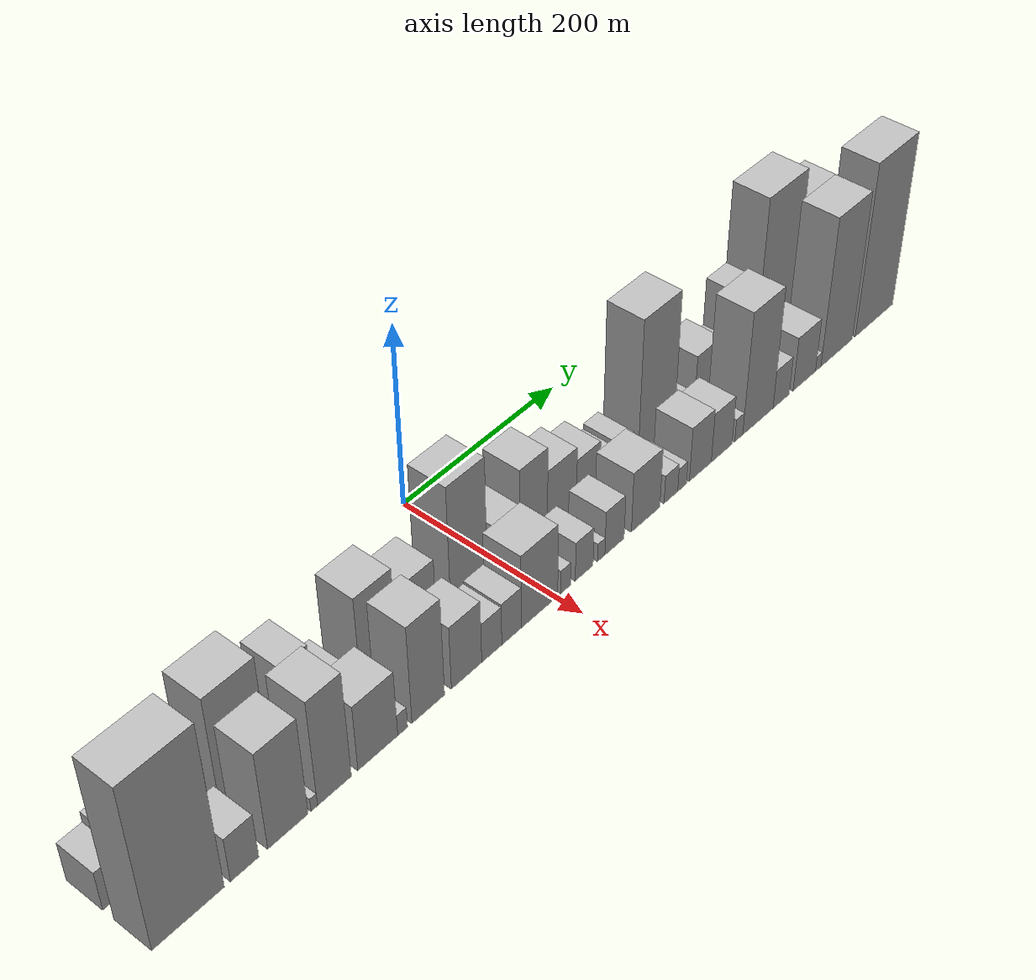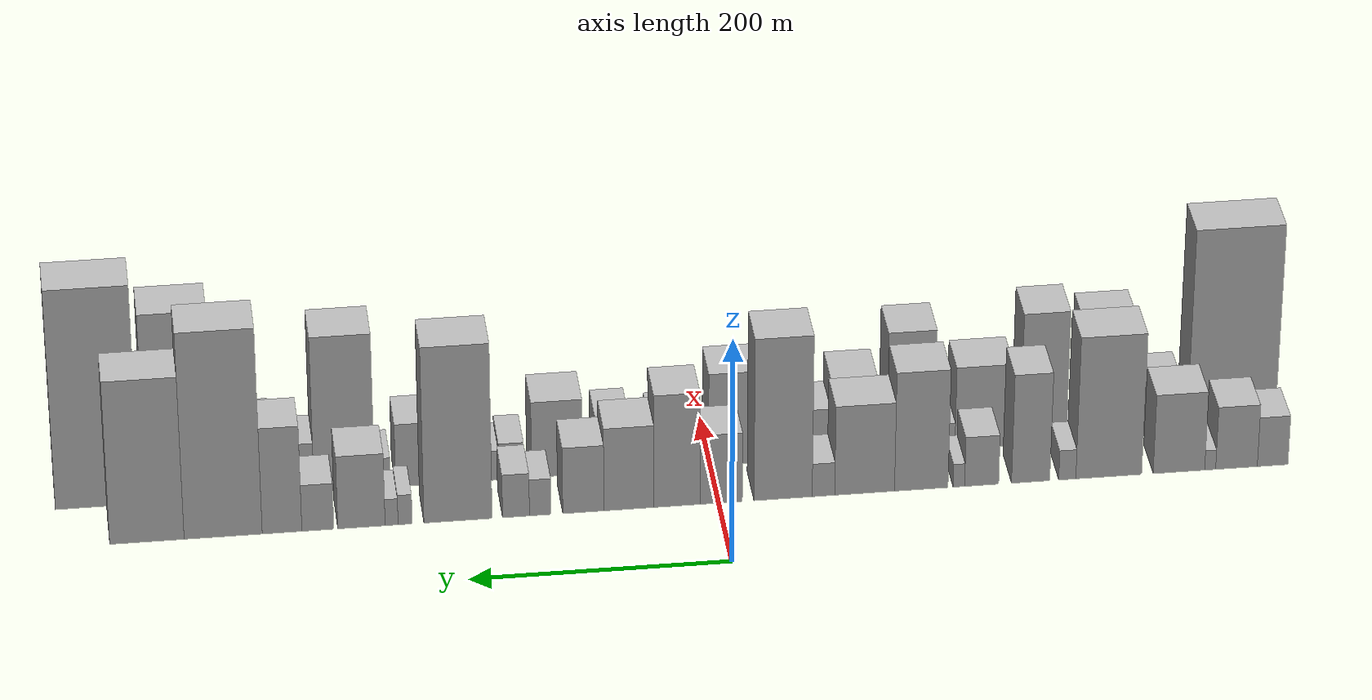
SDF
<sdf version="1.6">
 <world name="default">
  <scene>
   <sky><clouds><speed>12</speed></clouds></sky>
   <ambient>0.4 0.4 0.4 1</ambient>
   <background>0.7 0.7 0.7 1</background>
   <shadows>1</shadows>
  </scene>
  <gravity>0 0 -9.8066</gravity>
  <magnetic_field>6e-06 2.3e-05 -4.2e-05</magnetic_field>
  <physics default="0" name="default_physics" type="ode">
   <ode>
    <solver>
     <type>quick</type>
     <iters>10</iters>
     <sor>1.0</sor>
     <use_dynamic_moi_rescaling>0</use_dynamic_moi_rescaling>
    </solver>
    <constraints>
     <cfm>0</cfm>
     <erp>0.2</erp>
     <contact_max_correcting_vel>100</contact_max_correcting_vel>
     <contact_surface_layer>0.001</contact_surface_layer>
    </constraints>
   </ode>
   <max_step_size>0.004</max_step_size>
   <real_time_factor>1</real_time_factor>
   <real_time_update_rate>250</real_time_update_rate>
  </physics>
  <light name="sun" type="directional">
   <pose>0 0 10 0 0 0</pose>
   <diffuse>0.8 0.8 0.8 1</diffuse>
   <specular>0.2 0.2 0.2 1</specular>
   <attenuation>
    <range>1000</range>
    <constant>0.9</constant>
    <linear>0.01</linear>
    <quadratic>0.001</quadratic>
   </attenuation>
   <direction>-0.5 0.1 -0.9</direction>
  </light>
  <model name="building_1">
   <static>1</static>
   <pose>100.0000 -431.9606 0 0.000000 0.000000 0.000000</pose>
   <link name="link">
    <pose>0 0 22.50 0 0 0</pose>
    <collision name="collision"><geometry><box><size>40.0000 24.0787 45.0000</size></box></geometry></collision>
    <visual name="visual">
     <cast_shadows>0</cast_shadows>
     <geometry><box><size>40.0000 24.0787 45.0000</size></box></geometry>
     <material>
      <script>
       <uri>model://HANNAS_wall/materials/scripts</uri>
       <uri>model://HANNAS_wall/materials/textures</uri>
       <name>vrc/HANNAS_wall</name>
      </script>
     </material>
    </visual>
   </link>
  </model>
  <model name="building_2">
   <static>1</static>
   <pose>100.0000 -403.5433 0 0.000000 0.000000 0.000000</pose>
   <link name="link">
    <pose>0 0 28.50 0 0 0</pose>
    <collision name="collision"><geometry><box><size>40.0000 32.7560 57.0000</size></box></geometry></collision>
    <visual name="visual">
     <cast_shadows>0</cast_shadows>
     <geometry><box><size>40.0000 32.7560 57.0000</size></box></geometry>
     <material>
      <script>
       <uri>model://HANNAS_wall/materials/scripts</uri>
       <uri>model://HANNAS_wall/materials/textures</uri>
       <name>vrc/HANNAS_wall</name>
      </script>
     </material>
    </visual>
   </link>
  </model>
  <model name="building_3">
   <static>1</static>
   <pose>100.0000 -382.8551 0 0.000000 0.000000 0.000000</pose>
   <link name="link">
    <pose>0 0 9.00 0 0 0</pose>
    <collision name="collision"><geometry><box><size>40.0000 8.6203 18.0000</size></box></geometry></collision>
    <visual name="visual">
     <cast_shadows>0</cast_shadows>
     <geometry><box><size>40.0000 8.6203 18.0000</size></box></geometry>
     <material>
      <script>
       <uri>model://HANNAS_wall/materials/scripts</uri>
       <uri>model://HANNAS_wall/materials/textures</uri>
       <name>vrc/HANNAS_wall</name>
      </script>
     </material>
    </visual>
   </link>
  </model>
  <model name="building_4">
   <static>1</static>
   <pose>100.0000 -358.3349 0 0.000000 0.000000 0.000000</pose>
   <link name="link">
    <pose>0 0 36.00 0 0 0</pose>
    <collision name="collision"><geometry><box><size>40.0000 40.4201 72.0000</size></box></geometry></collision>
    <visual name="visual">
     <cast_shadows>0</cast_shadows>
     <geometry><box><size>40.0000 40.4201 72.0000</size></box></geometry>
     <material>
      <script>
       <uri>model://HANNAS_wall/materials/scripts</uri>
       <uri>model://HANNAS_wall/materials/textures</uri>
       <name>vrc/HANNAS_wall</name>
      </script>
     </material>
    </visual>
   </link>
  </model>
  <model name="building_5">
   <static>1</static>
   <pose>100.0000 -303.3557 0 0.000000 0.000000 0.000000</pose>
   <link name="link">
    <pose>0 0 64.50 0 0 0</pose>
    <collision name="collision"><geometry><box><size>40.0000 51.5383 129.0000</size></box></geometry></collision>
    <visual name="visual">
     <cast_shadows>0</cast_shadows>
     <geometry><box><size>40.0000 51.5383 129.0000</size></box></geometry>
     <material>
      <script>
       <uri>model://HANNAS_wall/materials/scripts</uri>
       <uri>model://HANNAS_wall/materials/textures</uri>
       <name>vrc/HANNAS_wall</name>
      </script>
     </material>
    </visual>
   </link>
  </model>
  <model name="building_6">
   <static>1</static>
   <pose>100.0000 -270.9101 0 0.000000 0.000000 0.000000</pose>
   <link name="link">
    <pose>0 0 13.50 0 0 0</pose>
    <collision name="collision"><geometry><box><size>40.0000 13.3529 27.0000</size></box></geometry></collision>
    <visual name="visual">
     <cast_shadows>0</cast_shadows>
     <geometry><box><size>40.0000 13.3529 27.0000</size></box></geometry>
     <material>
      <script>
       <uri>model://HANNAS_wall/materials/scripts</uri>
       <uri>model://HANNAS_wall/materials/textures</uri>
       <name>vrc/HANNAS_wall</name>
      </script>
     </material>
    </visual>
   </link>
  </model>
  <model name="building_7">
   <static>1</static>
   <pose>100.0000 -242.2882 0 0.000000 0.000000 0.000000</pose>
   <link name="link">
    <pose>0 0 49.50 0 0 0</pose>
    <collision name="collision"><geometry><box><size>40.0000 29.8910 99.0000</size></box></geometry></collision>
    <visual name="visual">
     <cast_shadows>0</cast_shadows>
     <geometry><box><size>40.0000 29.8910 99.0000</size></box></geometry>
     <material>
      <script>
       <uri>model://HANNAS_wall/materials/scripts</uri>
       <uri>model://HANNAS_wall/materials/textures</uri>
       <name>vrc/HANNAS_wall</name>
      </script>
     </material>
    </visual>
   </link>
  </model>
  <model name="building_8">
   <static>1</static>
   <pose>100.0000 -204.0655 0 0.000000 0.000000 0.000000</pose>
   <link name="link">
    <pose>0 0 22.50 0 0 0</pose>
    <collision name="collision"><geometry><box><size>40.0000 26.5543 45.0000</size></box></geometry></collision>
    <visual name="visual">
     <cast_shadows>0</cast_shadows>
     <geometry><box><size>40.0000 26.5543 45.0000</size></box></geometry>
     <material>
      <script>
       <uri>model://HANNAS_wall/materials/scripts</uri>
       <uri>model://HANNAS_wall/materials/textures</uri>
       <name>vrc/HANNAS_wall</name>
      </script>
     </material>
    </visual>
   </link>
  </model>
  <model name="building_9">
   <static>1</static>
   <pose>100.0000 -186.3053 0 0.000000 0.000000 0.000000</pose>
   <link name="link">
    <pose>0 0 10.50 0 0 0</pose>
    <collision name="collision"><geometry><box><size>40.0000 8.9660 21.0000</size></box></geometry></collision>
    <visual name="visual">
     <cast_shadows>0</cast_shadows>
     <geometry><box><size>40.0000 8.9660 21.0000</size></box></geometry>
     <material>
      <script>
       <uri>model://HANNAS_wall/materials/scripts</uri>
       <uri>model://HANNAS_wall/materials/textures</uri>
       <name>vrc/HANNAS_wall</name>
      </script>
     </material>
    </visual>
   </link>
  </model>
  <model name="building_10">
   <static>1</static>
   <pose>100.0000 -157.0110 0 0.000000 0.000000 0.000000</pose>
   <link name="link">
    <pose>0 0 54.00 0 0 0</pose>
    <collision name="collision"><geometry><box><size>40.0000 41.6227 108.0000</size></box></geometry></collision>
    <visual name="visual">
     <cast_shadows>0</cast_shadows>
     <geometry><box><size>40.0000 41.6227 108.0000</size></box></geometry>
     <material>
      <script>
       <uri>model://HANNAS_wall/materials/scripts</uri>
       <uri>model://HANNAS_wall/materials/textures</uri>
       <name>vrc/HANNAS_wall</name>
      </script>
     </material>
    </visual>
   </link>
  </model>
  <model name="building_11">
   <static>1</static>
   <pose>100.0000 -112.9597 0 0.000000 0.000000 0.000000</pose>
   <link name="link">
    <pose>0 0 40.50 0 0 0</pose>
    <collision name="collision"><geometry><box><size>40.0000 46.4799 81.0000</size></box></geometry></collision>
    <visual name="visual">
     <cast_shadows>0</cast_shadows>
     <geometry><box><size>40.0000 46.4799 81.0000</size></box></geometry>
     <material>
      <script>
       <uri>model://HANNAS_wall/materials/scripts</uri>
       <uri>model://HANNAS_wall/materials/textures</uri>
       <name>vrc/HANNAS_wall</name>
      </script>
     </material>
    </visual>
   </link>
  </model>
  <model name="building_12">
   <static>1</static>
   <pose>100.0000 -80.9833 0 0.000000 0.000000 0.000000</pose>
   <link name="link">
    <pose>0 0 15.00 0 0 0</pose>
    <collision name="collision"><geometry><box><size>40.0000 17.4728 30.0000</size></box></geometry></collision>
    <visual name="visual">
     <cast_shadows>0</cast_shadows>
     <geometry><box><size>40.0000 17.4728 30.0000</size></box></geometry>
     <material>
      <script>
       <uri>model://HANNAS_wall/materials/scripts</uri>
       <uri>model://HANNAS_wall/materials/textures</uri>
       <name>vrc/HANNAS_wall</name>
      </script>
     </material>
    </visual>
   </link>
  </model>
  <model name="building_13">
   <static>1</static>
   <pose>100.0000 -49.6829 0 0.000000 0.000000 0.000000</pose>
   <link name="link">
    <pose>0 0 73.50 0 0 0</pose>
    <collision name="collision"><geometry><box><size>40.0000 45.1280 147.0000</size></box></geometry></collision>
    <visual name="visual">
     <cast_shadows>0</cast_shadows>
     <geometry><box><size>40.0000 45.1280 147.0000</size></box></geometry>
     <material>
      <script>
       <uri>model://HANNAS_wall/materials/scripts</uri>
       <uri>model://HANNAS_wall/materials/textures</uri>
       <name>vrc/HANNAS_wall</name>
      </script>
     </material>
    </visual>
   </link>
  </model>
  <model name="building_14">
   <static>1</static>
   <pose>100.0000 -1.7428 0 0.000000 0.000000 0.000000</pose>
   <link name="link">
    <pose>0 0 31.50 0 0 0</pose>
    <collision name="collision"><geometry><box><size>40.0000 32.7522 63.0000</size></box></geometry></collision>
    <visual name="visual">
     <cast_shadows>0</cast_shadows>
     <geometry><box><size>40.0000 32.7522 63.0000</size></box></geometry>
     <material>
      <script>
       <uri>model://HANNAS_wall/materials/scripts</uri>
       <uri>model://HANNAS_wall/materials/textures</uri>
       <name>vrc/HANNAS_wall</name>
      </script>
     </material>
    </visual>
   </link>
  </model>
  <model name="building_15">
   <static>1</static>
   <pose>100.0000 32.4129 0 0.000000 0.000000 0.000000</pose>
   <link name="link">
    <pose>0 0 51.00 0 0 0</pose>
    <collision name="collision"><geometry><box><size>40.0000 35.5591 102.0000</size></box></geometry></collision>
    <visual name="visual">
     <cast_shadows>0</cast_shadows>
     <geometry><box><size>40.0000 35.5591 102.0000</size></box></geometry>
     <material>
      <script>
       <uri>model://HANNAS_wall/materials/scripts</uri>
       <uri>model://HANNAS_wall/materials/textures</uri>
       <name>vrc/HANNAS_wall</name>
      </script>
     </material>
    </visual>
   </link>
  </model>
  <model name="building_16">
   <static>1</static>
   <pose>100.0000 69.4691 0 0.000000 0.000000 0.000000</pose>
   <link name="link">
    <pose>0 0 37.50 0 0 0</pose>
    <collision name="collision"><geometry><box><size>40.0000 38.5532 75.0000</size></box></geometry></collision>
    <visual name="visual">
     <cast_shadows>0</cast_shadows>
     <geometry><box><size>40.0000 38.5532 75.0000</size></box></geometry>
     <material>
      <script>
       <uri>model://HANNAS_wall/materials/scripts</uri>
       <uri>model://HANNAS_wall/materials/textures</uri>
       <name>vrc/HANNAS_wall</name>
      </script>
     </material>
    </visual>
   </link>
  </model>
  <model name="building_17">
   <static>1</static>
   <pose>100.0000 104.5784 0 0.000000 0.000000 0.000000</pose>
   <link name="link">
    <pose>0 0 30.00 0 0 0</pose>
    <collision name="collision"><geometry><box><size>40.0000 31.6654 60.0000</size></box></geometry></collision>
    <visual name="visual">
     <cast_shadows>0</cast_shadows>
     <geometry><box><size>40.0000 31.6654 60.0000</size></box></geometry>
     <material>
      <script>
       <uri>model://HANNAS_wall/materials/scripts</uri>
       <uri>model://HANNAS_wall/materials/textures</uri>
       <name>vrc/HANNAS_wall</name>
      </script>
     </material>
    </visual>
   </link>
  </model>
  <model name="building_18">
   <static>1</static>
   <pose>100.0000 137.7473 0 0.000000 0.000000 0.000000</pose>
   <link name="link">
    <pose>0 0 16.50 0 0 0</pose>
    <collision name="collision"><geometry><box><size>40.0000 16.6725 33.0000</size></box></geometry></collision>
    <visual name="visual">
     <cast_shadows>0</cast_shadows>
     <geometry><box><size>40.0000 16.6725 33.0000</size></box></geometry>
     <material>
      <script>
       <uri>model://HANNAS_wall/materials/scripts</uri>
       <uri>model://HANNAS_wall/materials/textures</uri>
       <name>vrc/HANNAS_wall</name>
      </script>
     </material>
    </visual>
   </link>
  </model>
  <model name="building_19">
   <static>1</static>
   <pose>100.0000 156.4100 0 0.000000 0.000000 0.000000</pose>
   <link name="link">
    <pose>0 0 19.50 0 0 0</pose>
    <collision name="collision"><geometry><box><size>40.0000 20.6530 39.0000</size></box></geometry></collision>
    <visual name="visual">
     <cast_shadows>0</cast_shadows>
     <geometry><box><size>40.0000 20.6530 39.0000</size></box></geometry>
     <material>
      <script>
       <uri>model://HANNAS_wall/materials/scripts</uri>
       <uri>model://HANNAS_wall/materials/textures</uri>
       <name>vrc/HANNAS_wall</name>
      </script>
     </material>
    </visual>
   </link>
  </model>
  <model name="building_20">
   <static>1</static>
   <pose>100.0000 200.9010 0 0.000000 0.000000 0.000000</pose>
   <link name="link">
    <pose>0 0 79.50 0 0 0</pose>
    <collision name="collision"><geometry><box><size>40.0000 52.3291 159.0000</size></box></geometry></collision>
    <visual name="visual">
     <cast_shadows>0</cast_shadows>
     <geometry><box><size>40.0000 52.3291 159.0000</size></box></geometry>
     <material>
      <script>
       <uri>model://HANNAS_wall/materials/scripts</uri>
       <uri>model://HANNAS_wall/materials/textures</uri>
       <name>vrc/HANNAS_wall</name>
      </script>
     </material>
    </visual>
   </link>
  </model>
  <model name="building_21">
   <static>1</static>
   <pose>100.0000 241.4765 0 0.000000 0.000000 0.000000</pose>
   <link name="link">
    <pose>0 0 13.50 0 0 0</pose>
    <collision name="collision"><geometry><box><size>40.0000 10.8219 27.0000</size></box></geometry></collision>
    <visual name="visual">
     <cast_shadows>0</cast_shadows>
     <geometry><box><size>40.0000 10.8219 27.0000</size></box></geometry>
     <material>
      <script>
       <uri>model://HANNAS_wall/materials/scripts</uri>
       <uri>model://HANNAS_wall/materials/textures</uri>
       <name>vrc/HANNAS_wall</name>
      </script>
     </material>
    </visual>
   </link>
  </model>
  <model name="building_22">
   <static>1</static>
   <pose>100.0000 251.8419 0 0.000000 0.000000 0.000000</pose>
   <link name="link">
    <pose>0 0 12.00 0 0 0</pose>
    <collision name="collision"><geometry><box><size>40.0000 9.9089 24.0000</size></box></geometry></collision>
    <visual name="visual">
     <cast_shadows>0</cast_shadows>
     <geometry><box><size>40.0000 9.9089 24.0000</size></box></geometry>
     <material>
      <script>
       <uri>model://HANNAS_wall/materials/scripts</uri>
       <uri>model://HANNAS_wall/materials/textures</uri>
       <name>vrc/HANNAS_wall</name>
      </script>
     </material>
    </visual>
   </link>
  </model>
  <model name="building_23">
   <static>1</static>
   <pose>100.0000 274.8817 0 0.000000 0.000000 0.000000</pose>
   <link name="link">
    <pose>0 0 33.00 0 0 0</pose>
    <collision name="collision"><geometry><box><size>40.0000 36.1708 66.0000</size></box></geometry></collision>
    <visual name="visual">
     <cast_shadows>0</cast_shadows>
     <geometry><box><size>40.0000 36.1708 66.0000</size></box></geometry>
     <material>
      <script>
       <uri>model://HANNAS_wall/materials/scripts</uri>
       <uri>model://HANNAS_wall/materials/textures</uri>
       <name>vrc/HANNAS_wall</name>
      </script>
     </material>
    </visual>
   </link>
  </model>
  <model name="building_24">
   <static>1</static>
   <pose>100.0000 308.1856 0 0.000000 0.000000 0.000000</pose>
   <link name="link">
    <pose>0 0 21.00 0 0 0</pose>
    <collision name="collision"><geometry><box><size>40.0000 24.4369 42.0000</size></box></geometry></collision>
    <visual name="visual">
     <cast_shadows>0</cast_shadows>
     <geometry><box><size>40.0000 24.4369 42.0000</size></box></geometry>
     <material>
      <script>
       <uri>model://HANNAS_wall/materials/scripts</uri>
       <uri>model://HANNAS_wall/materials/textures</uri>
       <name>vrc/HANNAS_wall</name>
      </script>
     </material>
    </visual>
   </link>
  </model>
  <model name="building_25">
   <static>1</static>
   <pose>100.0000 335.5236 0 0.000000 0.000000 0.000000</pose>
   <link name="link">
    <pose>0 0 48.00 0 0 0</pose>
    <collision name="collision"><geometry><box><size>40.0000 30.2390 96.0000</size></box></geometry></collision>
    <visual name="visual">
     <cast_shadows>0</cast_shadows>
     <geometry><box><size>40.0000 30.2390 96.0000</size></box></geometry>
     <material>
      <script>
       <uri>model://HANNAS_wall/materials/scripts</uri>
       <uri>model://HANNAS_wall/materials/textures</uri>
       <name>vrc/HANNAS_wall</name>
      </script>
     </material>
    </visual>
   </link>
  </model>
  <model name="building_26">
   <static>1</static>
   <pose>100.0000 380.3939 0 0.000000 0.000000 0.000000</pose>
   <link name="link">
    <pose>0 0 93.00 0 0 0</pose>
    <collision name="collision"><geometry><box><size>40.0000 59.5017 186.0000</size></box></geometry></collision>
    <visual name="visual">
     <cast_shadows>0</cast_shadows>
     <geometry><box><size>40.0000 59.5017 186.0000</size></box></geometry>
     <material>
      <script>
       <uri>model://HANNAS_wall/materials/scripts</uri>
       <uri>model://HANNAS_wall/materials/textures</uri>
       <name>vrc/HANNAS_wall</name>
      </script>
     </material>
    </visual>
   </link>
  </model>
  <model name="building_27">
   <static>1</static>
   <pose>100.0000 438.4146 0 0.000000 0.000000 0.000000</pose>
   <link name="link">
    <pose>0 0 73.50 0 0 0</pose>
    <collision name="collision"><geometry><box><size>40.0000 56.5395 147.0000</size></box></geometry></collision>
    <visual name="visual">
     <cast_shadows>0</cast_shadows>
     <geometry><box><size>40.0000 56.5395 147.0000</size></box></geometry>
     <material>
      <script>
       <uri>model://HANNAS_wall/materials/scripts</uri>
       <uri>model://HANNAS_wall/materials/textures</uri>
       <name>vrc/HANNAS_wall</name>
      </script>
     </material>
    </visual>
   </link>
  </model>
  <model name="building_28">
   <static>1</static>
   <pose>152.0000 -409.0638 0 0.000000 0.000000 0.000000</pose>
   <link name="link">
    <pose>0 0 93.00 0 0 0</pose>
    <collision name="collision"><geometry><box><size>40.0000 69.8724 186.0000</size></box></geometry></collision>
    <visual name="visual">
     <cast_shadows>0</cast_shadows>
     <geometry><box><size>40.0000 69.8724 186.0000</size></box></geometry>
     <material>
      <script>
       <uri>model://HANNAS_wall/materials/scripts</uri>
       <uri>model://HANNAS_wall/materials/textures</uri>
       <name>vrc/HANNAS_wall</name>
      </script>
     </material>
    </visual>
   </link>
  </model>
  <model name="building_29">
   <static>1</static>
   <pose>152.0000 -353.9123 0 0.000000 0.000000 0.000000</pose>
   <link name="link">
    <pose>0 0 25.50 0 0 0</pose>
    <collision name="collision"><geometry><box><size>40.0000 28.4306 51.0000</size></box></geometry></collision>
    <visual name="visual">
     <cast_shadows>0</cast_shadows>
     <geometry><box><size>40.0000 28.4306 51.0000</size></box></geometry>
     <material>
      <script>
       <uri>model://HANNAS_wall/materials/scripts</uri>
       <uri>model://HANNAS_wall/materials/textures</uri>
       <name>vrc/HANNAS_wall</name>
      </script>
     </material>
    </visual>
   </link>
  </model>
  <model name="building_30">
   <static>1</static>
   <pose>152.0000 -309.7693 0 0.000000 0.000000 0.000000</pose>
   <link name="link">
    <pose>0 0 55.50 0 0 0</pose>
    <collision name="collision"><geometry><box><size>40.0000 41.8552 111.0000</size></box></geometry></collision>
    <visual name="visual">
     <cast_shadows>0</cast_shadows>
     <geometry><box><size>40.0000 41.8552 111.0000</size></box></geometry>
     <material>
      <script>
       <uri>model://HANNAS_wall/materials/scripts</uri>
       <uri>model://HANNAS_wall/materials/textures</uri>
       <name>vrc/HANNAS_wall</name>
      </script>
     </material>
    </visual>
   </link>
  </model>
  <model name="building_31">
   <static>1</static>
   <pose>152.0000 -282.4079 0 0.000000 0.000000 0.000000</pose>
   <link name="link">
    <pose>0 0 7.50 0 0 0</pose>
    <collision name="collision"><geometry><box><size>40.0000 6.8676 15.0000</size></box></geometry></collision>
    <visual name="visual">
     <cast_shadows>0</cast_shadows>
     <geometry><box><size>40.0000 6.8676 15.0000</size></box></geometry>
     <material>
      <script>
       <uri>model://HANNAS_wall/materials/scripts</uri>
       <uri>model://HANNAS_wall/materials/textures</uri>
       <name>vrc/HANNAS_wall</name>
      </script>
     </material>
    </visual>
   </link>
  </model>
  <model name="building_32">
   <static>1</static>
   <pose>152.0000 -260.8098 0 0.000000 0.000000 0.000000</pose>
   <link name="link">
    <pose>0 0 60.00 0 0 0</pose>
    <collision name="collision"><geometry><box><size>40.0000 36.3285 120.0000</size></box></geometry></collision>
    <visual name="visual">
     <cast_shadows>0</cast_shadows>
     <geometry><box><size>40.0000 36.3285 120.0000</size></box></geometry>
     <material>
      <script>
       <uri>model://HANNAS_wall/materials/scripts</uri>
       <uri>model://HANNAS_wall/materials/textures</uri>
       <name>vrc/HANNAS_wall</name>
      </script>
     </material>
    </visual>
   </link>
  </model>
  <model name="building_33">
   <static>1</static>
   <pose>152.0000 -213.5006 0 0.000000 0.000000 0.000000</pose>
   <link name="link">
    <pose>0 0 37.50 0 0 0</pose>
    <collision name="collision"><geometry><box><size>40.0000 44.2899 75.0000</size></box></geometry></collision>
    <visual name="visual">
     <cast_shadows>0</cast_shadows>
     <geometry><box><size>40.0000 44.2899 75.0000</size></box></geometry>
     <material>
      <script>
       <uri>model://HANNAS_wall/materials/scripts</uri>
       <uri>model://HANNAS_wall/materials/textures</uri>
       <name>vrc/HANNAS_wall</name>
      </script>
     </material>
    </visual>
   </link>
  </model>
  <model name="building_34">
   <static>1</static>
   <pose>152.0000 -185.8100 0 0.000000 0.000000 0.000000</pose>
   <link name="link">
    <pose>0 0 12.00 0 0 0</pose>
    <collision name="collision"><geometry><box><size>40.0000 11.0913 24.0000</size></box></geometry></collision>
    <visual name="visual">
     <cast_shadows>0</cast_shadows>
     <geometry><box><size>40.0000 11.0913 24.0000</size></box></geometry>
     <material>
      <script>
       <uri>model://HANNAS_wall/materials/scripts</uri>
       <uri>model://HANNAS_wall/materials/textures</uri>
       <name>vrc/HANNAS_wall</name>
      </script>
     </material>
    </visual>
   </link>
  </model>
  <model name="building_35">
   <static>1</static>
   <pose>152.0000 -156.4001 0 0.000000 0.000000 0.000000</pose>
   <link name="link">
    <pose>0 0 55.50 0 0 0</pose>
    <collision name="collision"><geometry><box><size>40.0000 37.7284 111.0000</size></box></geometry></collision>
    <visual name="visual">
     <cast_shadows>0</cast_shadows>
     <geometry><box><size>40.0000 37.7284 111.0000</size></box></geometry>
     <material>
      <script>
       <uri>model://HANNAS_wall/materials/scripts</uri>
       <uri>model://HANNAS_wall/materials/textures</uri>
       <name>vrc/HANNAS_wall</name>
      </script>
     </material>
    </visual>
   </link>
  </model>
  <model name="building_36">
   <static>1</static>
   <pose>152.0000 -111.4381 0 0.000000 0.000000 0.000000</pose>
   <link name="link">
    <pose>0 0 36.00 0 0 0</pose>
    <collision name="collision"><geometry><box><size>40.0000 36.1957 72.0000</size></box></geometry></collision>
    <visual name="visual">
     <cast_shadows>0</cast_shadows>
     <geometry><box><size>40.0000 36.1957 72.0000</size></box></geometry>
     <material>
      <script>
       <uri>model://HANNAS_wall/materials/scripts</uri>
       <uri>model://HANNAS_wall/materials/textures</uri>
       <name>vrc/HANNAS_wall</name>
      </script>
     </material>
    </visual>
   </link>
  </model>
  <model name="building_37">
   <static>1</static>
   <pose>152.0000 -81.1190 0 0.000000 0.000000 0.000000</pose>
   <link name="link">
    <pose>0 0 22.50 0 0 0</pose>
    <collision name="collision"><geometry><box><size>40.0000 24.4425 45.0000</size></box></geometry></collision>
    <visual name="visual">
     <cast_shadows>0</cast_shadows>
     <geometry><box><size>40.0000 24.4425 45.0000</size></box></geometry>
     <material>
      <script>
       <uri>model://HANNAS_wall/materials/scripts</uri>
       <uri>model://HANNAS_wall/materials/textures</uri>
       <name>vrc/HANNAS_wall</name>
      </script>
     </material>
    </visual>
   </link>
  </model>
  <model name="building_38">
   <static>1</static>
   <pose>152.0000 -56.7699 0 0.000000 0.000000 0.000000</pose>
   <link name="link">
    <pose>0 0 24.00 0 0 0</pose>
    <collision name="collision"><geometry><box><size>40.0000 24.2557 48.0000</size></box></geometry></collision>
    <visual name="visual">
     <cast_shadows>0</cast_shadows>
     <geometry><box><size>40.0000 24.2557 48.0000</size></box></geometry>
     <material>
      <script>
       <uri>model://HANNAS_wall/materials/scripts</uri>
       <uri>model://HANNAS_wall/materials/textures</uri>
       <name>vrc/HANNAS_wall</name>
      </script>
     </material>
    </visual>
   </link>
  </model>
  <model name="building_39">
   <static>1</static>
   <pose>152.0000 -21.5908 0 0.000000 0.000000 0.000000</pose>
   <link name="link">
    <pose>0 0 42.00 0 0 0</pose>
    <collision name="collision"><geometry><box><size>40.0000 46.1026 84.0000</size></box></geometry></collision>
    <visual name="visual">
     <cast_shadows>0</cast_shadows>
     <geometry><box><size>40.0000 46.1026 84.0000</size></box></geometry>
     <material>
      <script>
       <uri>model://HANNAS_wall/materials/scripts</uri>
       <uri>model://HANNAS_wall/materials/textures</uri>
       <name>vrc/HANNAS_wall</name>
      </script>
     </material>
    </visual>
   </link>
  </model>
  <model name="building_40">
   <static>1</static>
   <pose>152.0000 11.8453 0 0.000000 0.000000 0.000000</pose>
   <link name="link">
    <pose>0 0 13.50 0 0 0</pose>
    <collision name="collision"><geometry><box><size>40.0000 12.7696 27.0000</size></box></geometry></collision>
    <visual name="visual">
     <cast_shadows>0</cast_shadows>
     <geometry><box><size>40.0000 12.7696 27.0000</size></box></geometry>
     <material>
      <script>
       <uri>model://HANNAS_wall/materials/scripts</uri>
       <uri>model://HANNAS_wall/materials/textures</uri>
       <name>vrc/HANNAS_wall</name>
      </script>
     </material>
    </visual>
   </link>
  </model>
  <model name="building_41">
   <static>1</static>
   <pose>152.0000 35.9903 0 0.000000 0.000000 0.000000</pose>
   <link name="link">
    <pose>0 0 22.50 0 0 0</pose>
    <collision name="collision"><geometry><box><size>40.0000 23.5203 45.0000</size></box></geometry></collision>
    <visual name="visual">
     <cast_shadows>0</cast_shadows>
     <geometry><box><size>40.0000 23.5203 45.0000</size></box></geometry>
     <material>
      <script>
       <uri>model://HANNAS_wall/materials/scripts</uri>
       <uri>model://HANNAS_wall/materials/textures</uri>
       <name>vrc/HANNAS_wall</name>
      </script>
     </material>
    </visual>
   </link>
  </model>
  <model name="building_42">
   <static>1</static>
   <pose>152.0000 58.6183 0 0.000000 0.000000 0.000000</pose>
   <link name="link">
    <pose>0 0 10.50 0 0 0</pose>
    <collision name="collision"><geometry><box><size>40.0000 9.7357 21.0000</size></box></geometry></collision>
    <visual name="visual">
     <cast_shadows>0</cast_shadows>
     <geometry><box><size>40.0000 9.7357 21.0000</size></box></geometry>
     <material>
      <script>
       <uri>model://HANNAS_wall/materials/scripts</uri>
       <uri>model://HANNAS_wall/materials/textures</uri>
       <name>vrc/HANNAS_wall</name>
      </script>
     </material>
    </visual>
   </link>
  </model>
  <model name="building_43">
   <static>1</static>
   <pose>152.0000 76.5070 0 0.000000 0.000000 0.000000</pose>
   <link name="link">
    <pose>0 0 25.50 0 0 0</pose>
    <collision name="collision"><geometry><box><size>40.0000 26.0417 51.0000</size></box></geometry></collision>
    <visual name="visual">
     <cast_shadows>0</cast_shadows>
     <geometry><box><size>40.0000 26.0417 51.0000</size></box></geometry>
     <material>
      <script>
       <uri>model://HANNAS_wall/materials/scripts</uri>
       <uri>model://HANNAS_wall/materials/textures</uri>
       <name>vrc/HANNAS_wall</name>
      </script>
     </material>
    </visual>
   </link>
  </model>
  <model name="building_44">
   <static>1</static>
   <pose>152.0000 119.2971 0 0.000000 0.000000 0.000000</pose>
   <link name="link">
    <pose>0 0 34.50 0 0 0</pose>
    <collision name="collision"><geometry><box><size>40.0000 39.5385 69.0000</size></box></geometry></collision>
    <visual name="visual">
     <cast_shadows>0</cast_shadows>
     <geometry><box><size>40.0000 39.5385 69.0000</size></box></geometry>
     <material>
      <script>
       <uri>model://HANNAS_wall/materials/scripts</uri>
       <uri>model://HANNAS_wall/materials/textures</uri>
       <name>vrc/HANNAS_wall</name>
      </script>
     </material>
    </visual>
   </link>
  </model>
  <model name="building_45">
   <static>1</static>
   <pose>152.0000 154.7893 0 0.000000 0.000000 0.000000</pose>
   <link name="link">
    <pose>0 0 16.50 0 0 0</pose>
    <collision name="collision"><geometry><box><size>40.0000 19.4459 33.0000</size></box></geometry></collision>
    <visual name="visual">
     <cast_shadows>0</cast_shadows>
     <geometry><box><size>40.0000 19.4459 33.0000</size></box></geometry>
     <material>
      <script>
       <uri>model://HANNAS_wall/materials/scripts</uri>
       <uri>model://HANNAS_wall/materials/textures</uri>
       <name>vrc/HANNAS_wall</name>
      </script>
     </material>
    </visual>
   </link>
  </model>
  <model name="building_46">
   <static>1</static>
   <pose>152.0000 170.8584 0 0.000000 0.000000 0.000000</pose>
   <link name="link">
    <pose>0 0 13.50 0 0 0</pose>
    <collision name="collision"><geometry><box><size>40.0000 12.6923 27.0000</size></box></geometry></collision>
    <visual name="visual">
     <cast_shadows>0</cast_shadows>
     <geometry><box><size>40.0000 12.6923 27.0000</size></box></geometry>
     <material>
      <script>
       <uri>model://HANNAS_wall/materials/scripts</uri>
       <uri>model://HANNAS_wall/materials/textures</uri>
       <name>vrc/HANNAS_wall</name>
      </script>
     </material>
    </visual>
   </link>
  </model>
  <model name="building_47">
   <static>1</static>
   <pose>152.0000 197.2607 0 0.000000 0.000000 0.000000</pose>
   <link name="link">
    <pose>0 0 31.50 0 0 0</pose>
    <collision name="collision"><geometry><box><size>40.0000 32.1123 63.0000</size></box></geometry></collision>
    <visual name="visual">
     <cast_shadows>0</cast_shadows>
     <geometry><box><size>40.0000 32.1123 63.0000</size></box></geometry>
     <material>
      <script>
       <uri>model://HANNAS_wall/materials/scripts</uri>
       <uri>model://HANNAS_wall/materials/textures</uri>
       <name>vrc/HANNAS_wall</name>
      </script>
     </material>
    </visual>
   </link>
  </model>
  <model name="building_48">
   <static>1</static>
   <pose>152.0000 228.7948 0 0.000000 0.000000 0.000000</pose>
   <link name="link">
    <pose>0 0 28.50 0 0 0</pose>
    <collision name="collision"><geometry><box><size>40.0000 30.9560 57.0000</size></box></geometry></collision>
    <visual name="visual">
     <cast_shadows>0</cast_shadows>
     <geometry><box><size>40.0000 30.9560 57.0000</size></box></geometry>
     <material>
      <script>
       <uri>model://HANNAS_wall/materials/scripts</uri>
       <uri>model://HANNAS_wall/materials/textures</uri>
       <name>vrc/HANNAS_wall</name>
      </script>
     </material>
    </visual>
   </link>
  </model>
  <model name="building_49">
   <static>1</static>
   <pose>152.0000 254.3336 0 0.000000 0.000000 0.000000</pose>
   <link name="link">
    <pose>0 0 13.50 0 0 0</pose>
    <collision name="collision"><geometry><box><size>40.0000 12.1215 27.0000</size></box></geometry></collision>
    <visual name="visual">
     <cast_shadows>0</cast_shadows>
     <geometry><box><size>40.0000 12.1215 27.0000</size></box></geometry>
     <material>
      <script>
       <uri>model://HANNAS_wall/materials/scripts</uri>
       <uri>model://HANNAS_wall/materials/textures</uri>
       <name>vrc/HANNAS_wall</name>
      </script>
     </material>
    </visual>
   </link>
  </model>
  <model name="building_50">
   <static>1</static>
   <pose>152.0000 283.8129 0 0.000000 0.000000 0.000000</pose>
   <link name="link">
    <pose>0 0 70.50 0 0 0</pose>
    <collision name="collision"><geometry><box><size>40.0000 46.8372 141.0000</size></box></geometry></collision>
    <visual name="visual">
     <cast_shadows>0</cast_shadows>
     <geometry><box><size>40.0000 46.8372 141.0000</size></box></geometry>
     <material>
      <script>
       <uri>model://HANNAS_wall/materials/scripts</uri>
       <uri>model://HANNAS_wall/materials/textures</uri>
       <name>vrc/HANNAS_wall</name>
      </script>
     </material>
    </visual>
   </link>
  </model>
  <model name="building_51">
   <static>1</static>
   <pose>152.0000 320.0237 0 0.000000 0.000000 0.000000</pose>
   <link name="link">
    <pose>0 0 22.50 0 0 0</pose>
    <collision name="collision"><geometry><box><size>40.0000 25.5846 45.0000</size></box></geometry></collision>
    <visual name="visual">
     <cast_shadows>0</cast_shadows>
     <geometry><box><size>40.0000 25.5846 45.0000</size></box></geometry>
     <material>
      <script>
       <uri>model://HANNAS_wall/materials/scripts</uri>
       <uri>model://HANNAS_wall/materials/textures</uri>
       <name>vrc/HANNAS_wall</name>
      </script>
     </material>
    </visual>
   </link>
  </model>
  <model name="building_52">
   <static>1</static>
   <pose>152.0000 356.8944 0 0.000000 0.000000 0.000000</pose>
   <link name="link">
    <pose>0 0 31.50 0 0 0</pose>
    <collision name="collision"><geometry><box><size>40.0000 36.1568 63.0000</size></box></geometry></collision>
    <visual name="visual">
     <cast_shadows>0</cast_shadows>
     <geometry><box><size>40.0000 36.1568 63.0000</size></box></geometry>
     <material>
      <script>
       <uri>model://HANNAS_wall/materials/scripts</uri>
       <uri>model://HANNAS_wall/materials/textures</uri>
       <name>vrc/HANNAS_wall</name>
      </script>
     </material>
    </visual>
   </link>
  </model>
  <model name="building_53">
   <static>1</static>
   <pose>152.0000 379.4203 0 0.000000 0.000000 0.000000</pose>
   <link name="link">
    <pose>0 0 9.00 0 0 0</pose>
    <collision name="collision"><geometry><box><size>40.0000 8.8950 18.0000</size></box></geometry></collision>
    <visual name="visual">
     <cast_shadows>0</cast_shadows>
     <geometry><box><size>40.0000 8.8950 18.0000</size></box></geometry>
     <material>
      <script>
       <uri>model://HANNAS_wall/materials/scripts</uri>
       <uri>model://HANNAS_wall/materials/textures</uri>
       <name>vrc/HANNAS_wall</name>
      </script>
     </material>
    </visual>
   </link>
  </model>
  <model name="building_54">
   <static>1</static>
   <pose>152.0000 410.0173 0 0.000000 0.000000 0.000000</pose>
   <link name="link">
    <pose>0 0 85.50 0 0 0</pose>
    <collision name="collision"><geometry><box><size>40.0000 52.2990 171.0000</size></box></geometry></collision>
    <visual name="visual">
     <cast_shadows>0</cast_shadows>
     <geometry><box><size>40.0000 52.2990 171.0000</size></box></geometry>
     <material>
      <script>
       <uri>model://HANNAS_wall/materials/scripts</uri>
       <uri>model://HANNAS_wall/materials/textures</uri>
       <name>vrc/HANNAS_wall</name>
      </script>
     </material>
    </visual>
   </link>
  </model>
  <model name="building_55">
   <static>1</static>
   <pose>152.0000 473.4425 0 0.000000 0.000000 0.000000</pose>
   <link name="link">
    <pose>0 0 99.00 0 0 0</pose>
    <collision name="collision"><geometry><box><size>40.0000 64.5515 198.0000</size></box></geometry></collision>
    <visual name="visual">
     <cast_shadows>0</cast_shadows>
     <geometry><box><size>40.0000 64.5515 198.0000</size></box></geometry>
     <material>
      <script>
       <uri>model://HANNAS_wall/materials/scripts</uri>
       <uri>model://HANNAS_wall/materials/textures</uri>
       <name>vrc/HANNAS_wall</name>
      </script>
     </material>
    </visual>
   </link>
  </model>
 </world>
</sdf>
